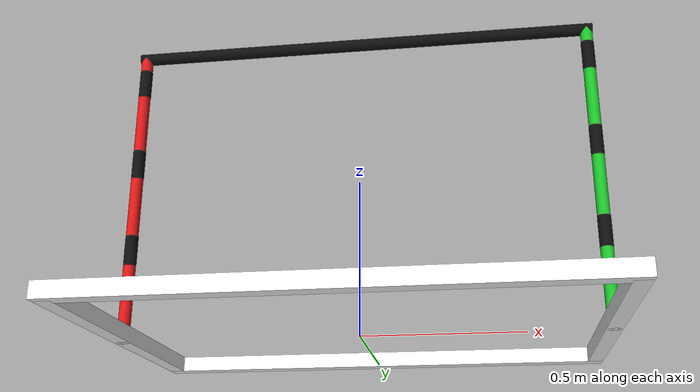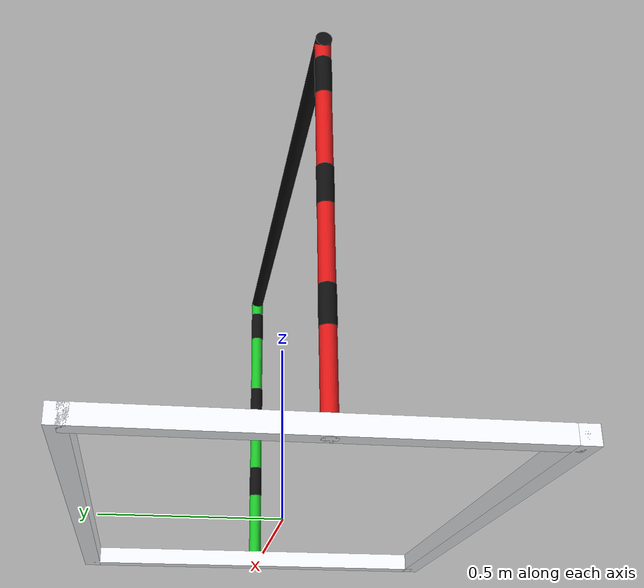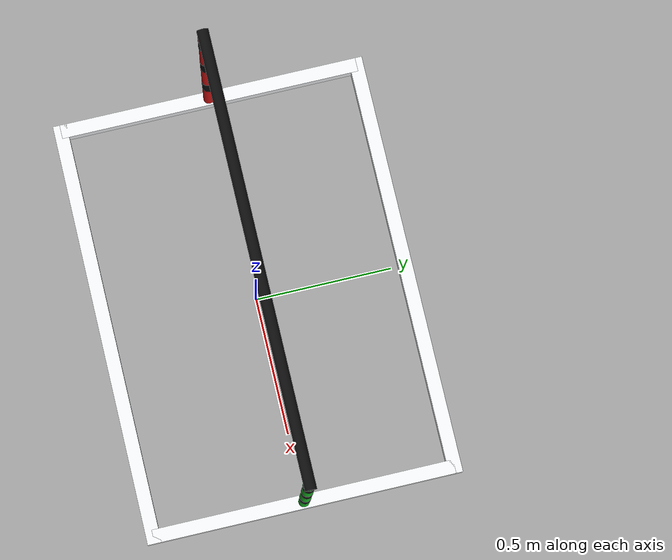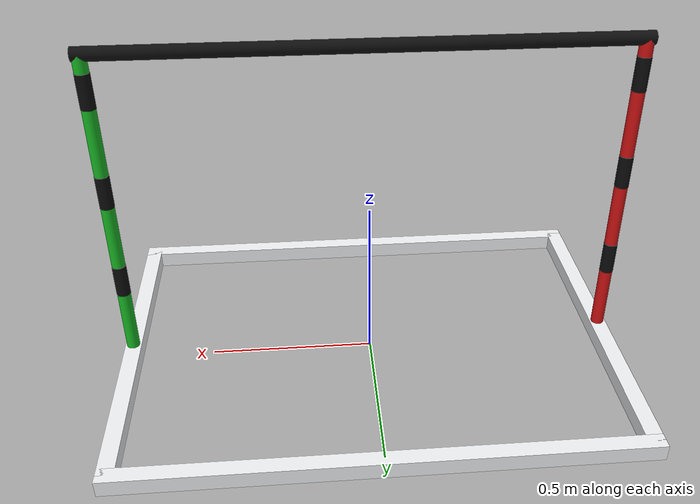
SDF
<?xml version="1.0"?>
<sdf version="1.8">
  <model name="gate">
    <static>true</static>

    <!-- Port pole: red banded with black, white shoe at the bottom. -->
    <link name="left_post">
      <pose>-0.75 0 0 0 0 0</pose>

      <visual name="shoe">
        <pose>0 0 0.025 0 0 0</pose>
        <geometry><cylinder><radius>0.02</radius><length>0.05</length></cylinder></geometry>
        <material>
          <ambient>0.85 0.85 0.85 1</ambient>
          <diffuse>0.95 0.95 0.95 1</diffuse>
          <specular>0.10 0.10 0.10 1</specular>
        </material>
      </visual>

      <visual name="band_colour_0">
        <pose>0 0 0.15 0 0 0</pose>
        <geometry><cylinder><radius>0.020</radius><length>0.20</length></cylinder></geometry>
        <material>
          <ambient>0.35 0.03 0.03 1</ambient>
          <diffuse>0.85 0.08 0.08 1</diffuse>
          <specular>0.05 0.05 0.05 1</specular>
        </material>
      </visual>
      <visual name="band_black_0">
        <pose>0 0 0.30 0 0 0</pose>
        <geometry><cylinder><radius>0.021</radius><length>0.10</length></cylinder></geometry>
        <material>
          <ambient>0.02 0.02 0.02 1</ambient>
          <diffuse>0.05 0.05 0.05 1</diffuse>
          <specular>0.02 0.02 0.02 1</specular>
        </material>
      </visual>
      <visual name="band_colour_1">
        <pose>0 0 0.45 0 0 0</pose>
        <geometry><cylinder><radius>0.020</radius><length>0.20</length></cylinder></geometry>
        <material>
          <ambient>0.35 0.03 0.03 1</ambient>
          <diffuse>0.85 0.08 0.08 1</diffuse>
          <specular>0.05 0.05 0.05 1</specular>
        </material>
      </visual>
      <visual name="band_black_1">
        <pose>0 0 0.60 0 0 0</pose>
        <geometry><cylinder><radius>0.021</radius><length>0.10</length></cylinder></geometry>
        <material>
          <ambient>0.02 0.02 0.02 1</ambient>
          <diffuse>0.05 0.05 0.05 1</diffuse>
          <specular>0.02 0.02 0.02 1</specular>
        </material>
      </visual>
      <visual name="band_colour_2">
        <pose>0 0 0.75 0 0 0</pose>
        <geometry><cylinder><radius>0.020</radius><length>0.20</length></cylinder></geometry>
        <material>
          <ambient>0.35 0.03 0.03 1</ambient>
          <diffuse>0.85 0.08 0.08 1</diffuse>
          <specular>0.05 0.05 0.05 1</specular>
        </material>
      </visual>
      <visual name="band_black_2">
        <pose>0 0 0.90 0 0 0</pose>
        <geometry><cylinder><radius>0.021</radius><length>0.10</length></cylinder></geometry>
        <material>
          <ambient>0.02 0.02 0.02 1</ambient>
          <diffuse>0.05 0.05 0.05 1</diffuse>
          <specular>0.02 0.02 0.02 1</specular>
        </material>
      </visual>
      <visual name="band_colour_3">
        <pose>0 0 0.975 0 0 0</pose>
        <geometry><cylinder><radius>0.020</radius><length>0.05</length></cylinder></geometry>
        <material>
          <ambient>0.35 0.03 0.03 1</ambient>
          <diffuse>0.85 0.08 0.08 1</diffuse>
          <specular>0.05 0.05 0.05 1</specular>
        </material>
      </visual>

      <collision name="collision">
        <pose>0 0 0.5 0 0 0</pose>
        <geometry><cylinder><radius>0.02</radius><length>1.0</length></cylinder></geometry>
      </collision>
    </link>

    <!-- Starboard pole: green banded with black. -->
    <link name="right_post">
      <pose>0.75 0 0 0 0 0</pose>

      <visual name="shoe">
        <pose>0 0 0.025 0 0 0</pose>
        <geometry><cylinder><radius>0.02</radius><length>0.05</length></cylinder></geometry>
        <material>
          <ambient>0.85 0.85 0.85 1</ambient>
          <diffuse>0.95 0.95 0.95 1</diffuse>
          <specular>0.10 0.10 0.10 1</specular>
        </material>
      </visual>

      <visual name="band_colour_0">
        <pose>0 0 0.15 0 0 0</pose>
        <geometry><cylinder><radius>0.020</radius><length>0.20</length></cylinder></geometry>
        <material>
          <ambient>0.03 0.30 0.05 1</ambient>
          <diffuse>0.10 0.75 0.15 1</diffuse>
          <specular>0.05 0.05 0.05 1</specular>
        </material>
      </visual>
      <visual name="band_black_0">
        <pose>0 0 0.30 0 0 0</pose>
        <geometry><cylinder><radius>0.021</radius><length>0.10</length></cylinder></geometry>
        <material>
          <ambient>0.02 0.02 0.02 1</ambient>
          <diffuse>0.05 0.05 0.05 1</diffuse>
          <specular>0.02 0.02 0.02 1</specular>
        </material>
      </visual>
      <visual name="band_colour_1">
        <pose>0 0 0.45 0 0 0</pose>
        <geometry><cylinder><radius>0.020</radius><length>0.20</length></cylinder></geometry>
        <material>
          <ambient>0.03 0.30 0.05 1</ambient>
          <diffuse>0.10 0.75 0.15 1</diffuse>
          <specular>0.05 0.05 0.05 1</specular>
        </material>
      </visual>
      <visual name="band_black_1">
        <pose>0 0 0.60 0 0 0</pose>
        <geometry><cylinder><radius>0.021</radius><length>0.10</length></cylinder></geometry>
        <material>
          <ambient>0.02 0.02 0.02 1</ambient>
          <diffuse>0.05 0.05 0.05 1</diffuse>
          <specular>0.02 0.02 0.02 1</specular>
        </material>
      </visual>
      <visual name="band_colour_2">
        <pose>0 0 0.75 0 0 0</pose>
        <geometry><cylinder><radius>0.020</radius><length>0.20</length></cylinder></geometry>
        <material>
          <ambient>0.03 0.30 0.05 1</ambient>
          <diffuse>0.10 0.75 0.15 1</diffuse>
          <specular>0.05 0.05 0.05 1</specular>
        </material>
      </visual>
      <visual name="band_black_2">
        <pose>0 0 0.90 0 0 0</pose>
        <geometry><cylinder><radius>0.021</radius><length>0.10</length></cylinder></geometry>
        <material>
          <ambient>0.02 0.02 0.02 1</ambient>
          <diffuse>0.05 0.05 0.05 1</diffuse>
          <specular>0.02 0.02 0.02 1</specular>
        </material>
      </visual>
      <visual name="band_colour_3">
        <pose>0 0 0.975 0 0 0</pose>
        <geometry><cylinder><radius>0.020</radius><length>0.05</length></cylinder></geometry>
        <material>
          <ambient>0.03 0.30 0.05 1</ambient>
          <diffuse>0.10 0.75 0.15 1</diffuse>
          <specular>0.05 0.05 0.05 1</specular>
        </material>
      </visual>

      <collision name="collision">
        <pose>0 0 0.5 0 0 0</pose>
        <geometry><cylinder><radius>0.02</radius><length>1.0</length></cylinder></geometry>
      </collision>
    </link>

    <!-- Black cross bar at 100 cm. -->
    <link name="top_bar">
      <pose>0 0 1.0 0 1.5708 0</pose>
      <visual name="visual">
        <geometry><cylinder><radius>0.02</radius><length>1.54</length></cylinder></geometry>
        <material>
          <ambient>0.02 0.02 0.02 1</ambient>
          <diffuse>0.05 0.05 0.05 1</diffuse>
          <specular>0.02 0.02 0.02 1</specular>
        </material>
      </visual>
      <collision name="collision">
        <geometry><cylinder><radius>0.02</radius><length>1.54</length></cylinder></geometry>
      </collision>
    </link>

    <!-- White PVC ground frame the poles are bolted into. -->
    <link name="base_frame">
      <pose>0 0 0.025 0 0 0</pose>
      <visual name="rail_port">
        <pose>-0.75 0 0 0 0 0</pose>
        <geometry><box><size>0.05 1.10 0.05</size></box></geometry>
        <material>
          <ambient>0.80 0.82 0.83 1</ambient>
          <diffuse>0.94 0.95 0.96 1</diffuse>
          <specular>0.15 0.15 0.15 1</specular>
        </material>
      </visual>
      <visual name="rail_starboard">
        <pose>0.75 0 0 0 0 0</pose>
        <geometry><box><size>0.05 1.10 0.05</size></box></geometry>
        <material>
          <ambient>0.80 0.82 0.83 1</ambient>
          <diffuse>0.94 0.95 0.96 1</diffuse>
          <specular>0.15 0.15 0.15 1</specular>
        </material>
      </visual>
      <visual name="rail_near">
        <pose>0 -0.55 0 0 0 0</pose>
        <geometry><box><size>1.55 0.05 0.05</size></box></geometry>
        <material>
          <ambient>0.80 0.82 0.83 1</ambient>
          <diffuse>0.94 0.95 0.96 1</diffuse>
          <specular>0.15 0.15 0.15 1</specular>
        </material>
      </visual>
      <visual name="rail_far">
        <pose>0 0.55 0 0 0 0</pose>
        <geometry><box><size>1.55 0.05 0.05</size></box></geometry>
        <material>
          <ambient>0.80 0.82 0.83 1</ambient>
          <diffuse>0.94 0.95 0.96 1</diffuse>
          <specular>0.15 0.15 0.15 1</specular>
        </material>
      </visual>
    </link>
  </model>
</sdf>
